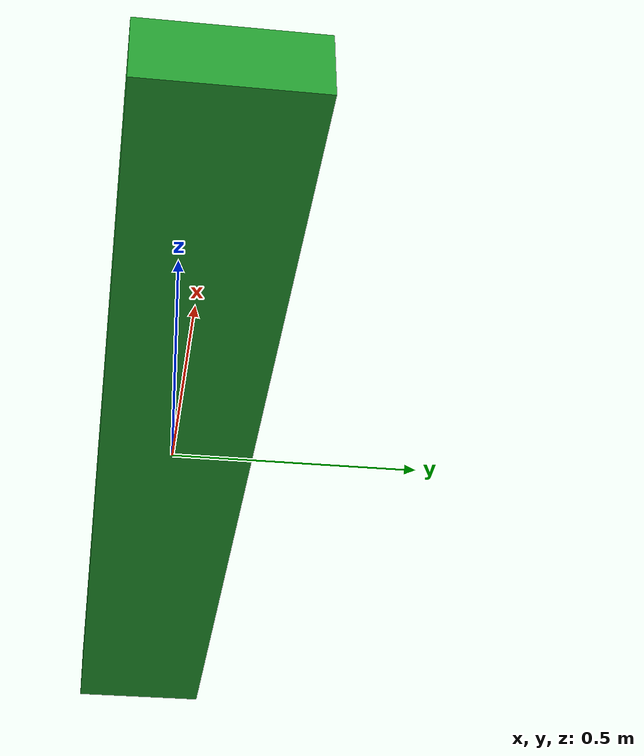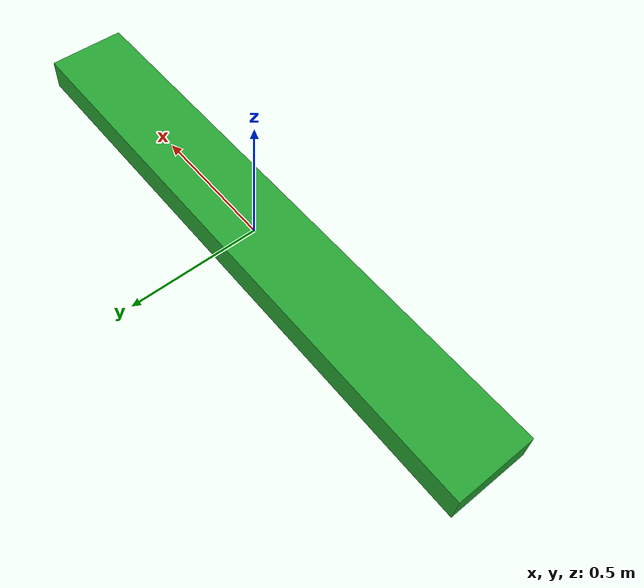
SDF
<?xml version="1.0"?>
<sdf version="1.6">
  <model name="ridge">
    <link name="link">
      <collision name="collision">
        <geometry>
          <box>
            <size>2.2 0.3 0.12</size>  <!-- 长、宽、高（单位：米） -->
          </box>
        </geometry>
      </collision>
      <visual name="visual">
        <geometry>
          <box>
            <size>2.2 0.3 0.12</size>
          </box>
        </geometry>
        <material>
          <script>
            <name>Gazebo/Green</name>  <!-- 视觉材质（绿色，模拟草地/土壤） -->
            <uri>model://materials/scripts/gazebo.material</uri>
          </script>
        </material>
      </visual>
    </link>
  </model>
</sdf>
